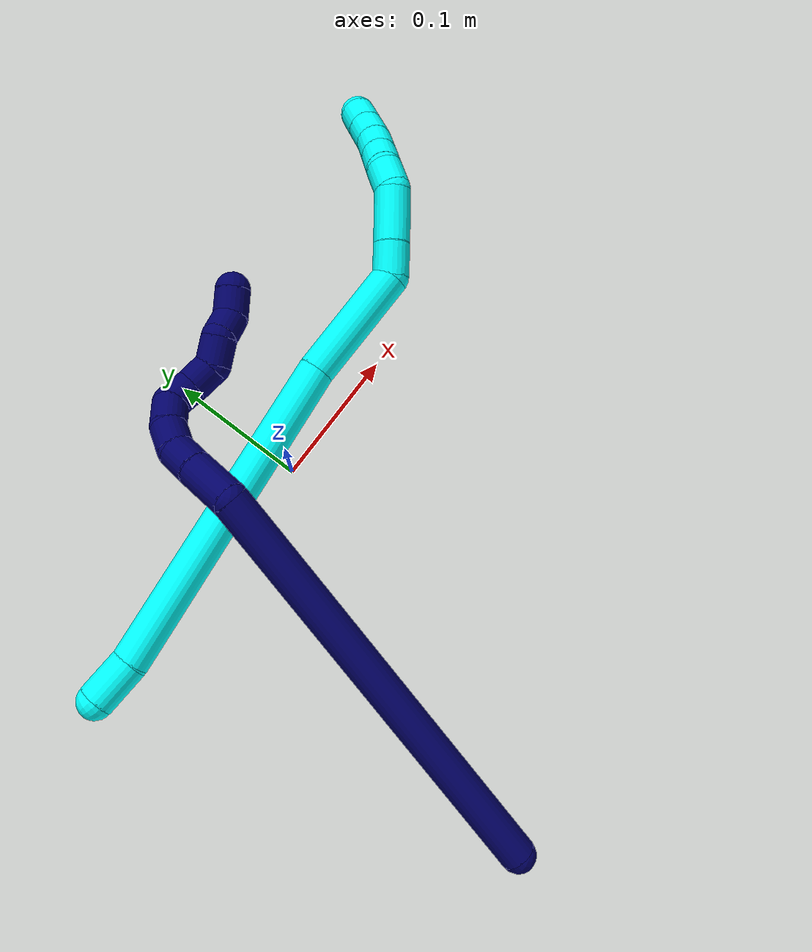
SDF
<sdf version="1.7">
 <world name="default">
  <model name="3">
   <static>0</static>
   <link name="3">
    <collision name="collision-cylinder-e_1_1_4">
     <pose>0.003811 -0.001877 0.015196 0.122875 0.243915 0.015079</pose>
     <geometry><cylinder><radius>0.0125</radius><length>0.031558</length></cylinder></geometry>
     <surface>
      <friction><ode><mu>1.16</mu><mu2>1.16</mu2><slip1>0</slip1><slip2>0</slip2></ode></friction>
      <contact><ode><kp>1e+06</kp><kd>1</kd><max_vel>0</max_vel><min_depth>0.001</min_depth></ode></contact>
     </surface>
    </collision>
    <visual name="visual-cylinder-e_1_1_4">
     <pose>0.003811 -0.001877 0.015196 0.122875 0.243915 0.015079</pose>
     <geometry><cylinder><radius>0.0125</radius><length>0.031558</length></cylinder></geometry>
     <material><ambient>0.003922 1 0.996078 1</ambient></material>
    </visual>
    <collision name="collision-cylinder-e_2_4_5">
     <pose>0.051763 -0.010143 0.134439 0.061339 0.400562 0.012456</pose>
     <geometry><cylinder><radius>0.0125</radius><length>0.226406</length></cylinder></geometry>
     <surface>
      <friction><ode><mu>1.16</mu><mu2>1.16</mu2><slip1>0</slip1><slip2>0</slip2></ode></friction>
      <contact><ode><kp>1e+06</kp><kd>1</kd><max_vel>0</max_vel><min_depth>0.001</min_depth></ode></contact>
     </surface>
    </collision>
    <visual name="visual-cylinder-e_2_4_5">
     <pose>0.051763 -0.010143 0.134439 0.061339 0.400562 0.012456</pose>
     <geometry><cylinder><radius>0.0125</radius><length>0.226406</length></cylinder></geometry>
     <material><ambient>0.003922 1 0.996078 1</ambient></material>
    </visual>
    <collision name="collision-cylinder-e_3_5_6">
     <pose>0.105539 -0.016355 0.277706 -0.004558 0.240845 -0.000552</pose>
     <geometry><cylinder><radius>0.0125</radius><length>0.080776</length></cylinder></geometry>
     <surface>
      <friction><ode><mu>1.16</mu><mu2>1.16</mu2><slip1>0</slip1><slip2>0</slip2></ode></friction>
      <contact><ode><kp>1e+06</kp><kd>1</kd><max_vel>0</max_vel><min_depth>0.001</min_depth></ode></contact>
     </surface>
    </collision>
    <visual name="visual-cylinder-e_3_5_6">
     <pose>0.105539 -0.016355 0.277706 -0.004558 0.240845 -0.000552</pose>
     <geometry><cylinder><radius>0.0125</radius><length>0.080776</length></cylinder></geometry>
     <material><ambient>0.003922 1 0.996078 1</ambient></material>
    </visual>
    <collision name="collision-cylinder-e_4_6_7">
     <pose>0.123274 -0.012983 0.324436 -0.402129 0.78196 -0.167634</pose>
     <geometry><cylinder><radius>0.0125</radius><length>0.022996</length></cylinder></geometry>
     <surface>
      <friction><ode><mu>1.16</mu><mu2>1.16</mu2><slip1>0</slip1><slip2>0</slip2></ode></friction>
      <contact><ode><kp>1e+06</kp><kd>1</kd><max_vel>0</max_vel><min_depth>0.001</min_depth></ode></contact>
     </surface>
    </collision>
    <visual name="visual-cylinder-e_4_6_7">
     <pose>0.123274 -0.012983 0.324436 -0.402129 0.78196 -0.167634</pose>
     <geometry><cylinder><radius>0.0125</radius><length>0.022996</length></cylinder></geometry>
     <material><ambient>0.003922 1 0.996078 1</ambient></material>
    </visual>
    <collision name="collision-cylinder-e_5_7_8">
     <pose>0.145055 -0.005389 0.343819 -0.354893 0.823859 -0.156391</pose>
     <geometry><cylinder><radius>0.0125</radius><length>0.037283</length></cylinder></geometry>
     <surface>
      <friction><ode><mu>1.16</mu><mu2>1.16</mu2><slip1>0</slip1><slip2>0</slip2></ode></friction>
      <contact><ode><kp>1e+06</kp><kd>1</kd><max_vel>0</max_vel><min_depth>0.001</min_depth></ode></contact>
     </surface>
    </collision>
    <visual name="visual-cylinder-e_5_7_8">
     <pose>0.145055 -0.005389 0.343819 -0.354893 0.823859 -0.156391</pose>
     <geometry><cylinder><radius>0.0125</radius><length>0.037283</length></cylinder></geometry>
     <material><ambient>0.003922 1 0.996078 1</ambient></material>
    </visual>
    <collision name="collision-cylinder-e_6_8_9">
     <pose>0.168475 -0.001189 0.358829 0.063952 1.25887 0.046581</pose>
     <geometry><cylinder><radius>0.0125</radius><length>0.020469</length></cylinder></geometry>
     <surface>
      <friction><ode><mu>1.16</mu><mu2>1.16</mu2><slip1>0</slip1><slip2>0</slip2></ode></friction>
      <contact><ode><kp>1e+06</kp><kd>1</kd><max_vel>0</max_vel><min_depth>0.001</min_depth></ode></contact>
     </surface>
    </collision>
    <visual name="visual-cylinder-e_6_8_9">
     <pose>0.168475 -0.001189 0.358829 0.063952 1.25887 0.046581</pose>
     <geometry><cylinder><radius>0.0125</radius><length>0.020469</length></cylinder></geometry>
     <material><ambient>0.003922 1 0.996078 1</ambient></material>
    </visual>
    <collision name="collision-cylinder-e_7_9_10">
     <pose>0.187173 -0.005111 0.364743 0.929272 1.09238 0.591508</pose>
     <geometry><cylinder><radius>0.0125</radius><length>0.02018</length></cylinder></geometry>
     <surface>
      <friction><ode><mu>1.16</mu><mu2>1.16</mu2><slip1>0</slip1><slip2>0</slip2></ode></friction>
      <contact><ode><kp>1e+06</kp><kd>1</kd><max_vel>0</max_vel><min_depth>0.001</min_depth></ode></contact>
     </surface>
    </collision>
    <visual name="visual-cylinder-e_7_9_10">
     <pose>0.187173 -0.005111 0.364743 0.929272 1.09238 0.591508</pose>
     <geometry><cylinder><radius>0.0125</radius><length>0.02018</length></cylinder></geometry>
     <material><ambient>0.003922 1 0.996078 1</ambient></material>
    </visual>
    <collision name="collision-cylinder-e_8_10_11">
     <pose>0.205139 -0.012241 0.370285 0.889867 1.11765 0.579541</pose>
     <geometry><cylinder><radius>0.0125</radius><length>0.020041</length></cylinder></geometry>
     <surface>
      <friction><ode><mu>1.16</mu><mu2>1.16</mu2><slip1>0</slip1><slip2>0</slip2></ode></friction>
      <contact><ode><kp>1e+06</kp><kd>1</kd><max_vel>0</max_vel><min_depth>0.001</min_depth></ode></contact>
     </surface>
    </collision>
    <visual name="visual-cylinder-e_8_10_11">
     <pose>0.205139 -0.012241 0.370285 0.889867 1.11765 0.579541</pose>
     <geometry><cylinder><radius>0.0125</radius><length>0.020041</length></cylinder></geometry>
     <material><ambient>0.003922 1 0.996078 1</ambient></material>
    </visual>
    <collision name="collision-cylinder-e_9_11_12">
     <pose>0.223673 -0.0181 0.374958 0.908211 1.25546 0.68084</pose>
     <geometry><cylinder><radius>0.0125</radius><length>0.020039</length></cylinder></geometry>
     <surface>
      <friction><ode><mu>1.16</mu><mu2>1.16</mu2><slip1>0</slip1><slip2>0</slip2></ode></friction>
      <contact><ode><kp>1e+06</kp><kd>1</kd><max_vel>0</max_vel><min_depth>0.001</min_depth></ode></contact>
     </surface>
    </collision>
    <visual name="visual-cylinder-e_9_11_12">
     <pose>0.223673 -0.0181 0.374958 0.908211 1.25546 0.68084</pose>
     <geometry><cylinder><radius>0.0125</radius><length>0.020039</length></cylinder></geometry>
     <material><ambient>0.003922 1 0.996078 1</ambient></material>
    </visual>
    <collision name="collision-cylinder-e_10_12_2">
     <pose>0.242826 -0.023056 0.378763 0.923787 1.25539 0.693242</pose>
     <geometry><cylinder><radius>0.0125</radius><length>0.020253</length></cylinder></geometry>
     <surface>
      <friction><ode><mu>1.16</mu><mu2>1.16</mu2><slip1>0</slip1><slip2>0</slip2></ode></friction>
      <contact><ode><kp>1e+06</kp><kd>1</kd><max_vel>0</max_vel><min_depth>0.001</min_depth></ode></contact>
     </surface>
    </collision>
    <visual name="visual-cylinder-e_10_12_2">
     <pose>0.242826 -0.023056 0.378763 0.923787 1.25539 0.693242</pose>
     <geometry><cylinder><radius>0.0125</radius><length>0.020253</length></cylinder></geometry>
     <material><ambient>0.003922 1 0.996078 1</ambient></material>
    </visual>
    <collision name="collision-sphere-2">
     <pose>0.252452 -0.025562 0.380656 0 -0 0</pose>
     <geometry><sphere><radius>0.0125</radius></sphere></geometry>
     <surface>
      <friction><ode><mu>1.16</mu><mu2>1.16</mu2><slip1>0</slip1><slip2>0</slip2></ode></friction>
      <contact><ode><kp>1e+06</kp><kd>1</kd><max_vel>0</max_vel><min_depth>0.001</min_depth></ode></contact>
     </surface>
    </collision>
    <visual name="visual-sphere-2">
     <pose>0.252452 -0.025562 0.380656 0 -0 0</pose>
     <geometry><sphere><radius>0.0125</radius></sphere></geometry>
     <material><ambient>0.003922 1 0.996078 1</ambient></material>
    </visual>
    <collision name="collision-sphere-12">
     <pose>0.233199 -0.02055 0.376869 0 -0 0</pose>
     <geometry><sphere><radius>0.0125</radius></sphere></geometry>
     <surface>
      <friction><ode><mu>1.16</mu><mu2>1.16</mu2><slip1>0</slip1><slip2>0</slip2></ode></friction>
      <contact><ode><kp>1e+06</kp><kd>1</kd><max_vel>0</max_vel><min_depth>0.001</min_depth></ode></contact>
     </surface>
    </collision>
    <visual name="visual-sphere-12">
     <pose>0.233199 -0.02055 0.376869 0 -0 0</pose>
     <geometry><sphere><radius>0.0125</radius></sphere></geometry>
     <material><ambient>0.003922 1 0.996078 1</ambient></material>
    </visual>
    <collision name="collision-sphere-11">
     <pose>0.214148 -0.01565 0.373046 0 -0 0</pose>
     <geometry><sphere><radius>0.0125</radius></sphere></geometry>
     <surface>
      <friction><ode><mu>1.16</mu><mu2>1.16</mu2><slip1>0</slip1><slip2>0</slip2></ode></friction>
      <contact><ode><kp>1e+06</kp><kd>1</kd><max_vel>0</max_vel><min_depth>0.001</min_depth></ode></contact>
     </surface>
    </collision>
    <visual name="visual-sphere-11">
     <pose>0.214148 -0.01565 0.373046 0 -0 0</pose>
     <geometry><sphere><radius>0.0125</radius></sphere></geometry>
     <material><ambient>0.003922 1 0.996078 1</ambient></material>
    </visual>
    <collision name="collision-sphere-10">
     <pose>0.19613 -0.008833 0.367523 0 -0 0</pose>
     <geometry><sphere><radius>0.0125</radius></sphere></geometry>
     <surface>
      <friction><ode><mu>1.16</mu><mu2>1.16</mu2><slip1>0</slip1><slip2>0</slip2></ode></friction>
      <contact><ode><kp>1e+06</kp><kd>1</kd><max_vel>0</max_vel><min_depth>0.001</min_depth></ode></contact>
     </surface>
    </collision>
    <visual name="visual-sphere-10">
     <pose>0.19613 -0.008833 0.367523 0 -0 0</pose>
     <geometry><sphere><radius>0.0125</radius></sphere></geometry>
     <material><ambient>0.003922 1 0.996078 1</ambient></material>
    </visual>
    <collision name="collision-sphere-9">
     <pose>0.178216 -0.00139 0.361964 0 -0 0</pose>
     <geometry><sphere><radius>0.0125</radius></sphere></geometry>
     <surface>
      <friction><ode><mu>1.16</mu><mu2>1.16</mu2><slip1>0</slip1><slip2>0</slip2></ode></friction>
      <contact><ode><kp>1e+06</kp><kd>1</kd><max_vel>0</max_vel><min_depth>0.001</min_depth></ode></contact>
     </surface>
    </collision>
    <visual name="visual-sphere-9">
     <pose>0.178216 -0.00139 0.361964 0 -0 0</pose>
     <geometry><sphere><radius>0.0125</radius></sphere></geometry>
     <material><ambient>0.003922 1 0.996078 1</ambient></material>
    </visual>
    <collision name="collision-sphere-4">
     <pose>0.007621 -0.003753 0.030393 0 -0 0</pose>
     <geometry><sphere><radius>0.0125</radius></sphere></geometry>
     <surface>
      <friction><ode><mu>1.16</mu><mu2>1.16</mu2><slip1>0</slip1><slip2>0</slip2></ode></friction>
      <contact><ode><kp>1e+06</kp><kd>1</kd><max_vel>0</max_vel><min_depth>0.001</min_depth></ode></contact>
     </surface>
    </collision>
    <visual name="visual-sphere-4">
     <pose>0.007621 -0.003753 0.030393 0 -0 0</pose>
     <geometry><sphere><radius>0.0125</radius></sphere></geometry>
     <material><ambient>0.003922 1 0.996078 1</ambient></material>
    </visual>
    <collision name="collision-sphere-1">
     <geometry><sphere><radius>0.0125</radius></sphere></geometry>
     <surface>
      <friction><ode><mu>1.16</mu><mu2>1.16</mu2><slip1>0</slip1><slip2>0</slip2></ode></friction>
      <contact><ode><kp>1e+06</kp><kd>1</kd><max_vel>0</max_vel><min_depth>0.001</min_depth></ode></contact>
     </surface>
    </collision>
    <visual name="visual-sphere-1">
     <geometry><sphere><radius>0.0125</radius></sphere></geometry>
     <material><ambient>0.003922 1 0.996078 1</ambient></material>
    </visual>
    <collision name="collision-sphere-8">
     <pose>0.158734 -0.000988 0.355695 0 -0 0</pose>
     <geometry><sphere><radius>0.0125</radius></sphere></geometry>
     <surface>
      <friction><ode><mu>1.16</mu><mu2>1.16</mu2><slip1>0</slip1><slip2>0</slip2></ode></friction>
      <contact><ode><kp>1e+06</kp><kd>1</kd><max_vel>0</max_vel><min_depth>0.001</min_depth></ode></contact>
     </surface>
    </collision>
    <visual name="visual-sphere-8">
     <pose>0.158734 -0.000988 0.355695 0 -0 0</pose>
     <geometry><sphere><radius>0.0125</radius></sphere></geometry>
     <material><ambient>0.003922 1 0.996078 1</ambient></material>
    </visual>
    <collision name="collision-sphere-5">
     <pose>0.095905 -0.016534 0.238485 0 -0 0</pose>
     <geometry><sphere><radius>0.0125</radius></sphere></geometry>
     <surface>
      <friction><ode><mu>1.16</mu><mu2>1.16</mu2><slip1>0</slip1><slip2>0</slip2></ode></friction>
      <contact><ode><kp>1e+06</kp><kd>1</kd><max_vel>0</max_vel><min_depth>0.001</min_depth></ode></contact>
     </surface>
    </collision>
    <visual name="visual-sphere-5">
     <pose>0.095905 -0.016534 0.238485 0 -0 0</pose>
     <geometry><sphere><radius>0.0125</radius></sphere></geometry>
     <material><ambient>0.003922 1 0.996078 1</ambient></material>
    </visual>
    <collision name="collision-sphere-6">
     <pose>0.115172 -0.016176 0.316928 0 -0 0</pose>
     <geometry><sphere><radius>0.0125</radius></sphere></geometry>
     <surface>
      <friction><ode><mu>1.16</mu><mu2>1.16</mu2><slip1>0</slip1><slip2>0</slip2></ode></friction>
      <contact><ode><kp>1e+06</kp><kd>1</kd><max_vel>0</max_vel><min_depth>0.001</min_depth></ode></contact>
     </surface>
    </collision>
    <visual name="visual-sphere-6">
     <pose>0.115172 -0.016176 0.316928 0 -0 0</pose>
     <geometry><sphere><radius>0.0125</radius></sphere></geometry>
     <material><ambient>0.003922 1 0.996078 1</ambient></material>
    </visual>
    <collision name="collision-sphere-7">
     <pose>0.131377 -0.00979 0.331943 0 -0 0</pose>
     <geometry><sphere><radius>0.0125</radius></sphere></geometry>
     <surface>
      <friction><ode><mu>1.16</mu><mu2>1.16</mu2><slip1>0</slip1><slip2>0</slip2></ode></friction>
      <contact><ode><kp>1e+06</kp><kd>1</kd><max_vel>0</max_vel><min_depth>0.001</min_depth></ode></contact>
     </surface>
    </collision>
    <visual name="visual-sphere-7">
     <pose>0.131377 -0.00979 0.331943 0 -0 0</pose>
     <geometry><sphere><radius>0.0125</radius></sphere></geometry>
     <material><ambient>0.003922 1 0.996078 1</ambient></material>
    </visual>
    <inertial>
     <pose>0.098689 -0.010758 0.221879 0 -0 0</pose>
     <mass>0.5</mass>
     <inertia>
      <ixx>0.000987</ixx>
      <ixy>0</ixy>
      <ixz>0</ixz>
      <iyy>0.001049</iyy>
      <iyz>0</iyz>
      <izz>-0.00032</izz>
     </inertia>
    </inertial>
   </link>
   <pose>-0.196171 0.002028 0.055735 1.38487 0.346723 1.25707</pose>
  </model>
  <model name="7">
   <static>0</static>
   <link name="7">
    <collision name="collision-cylinder-e_1_1_4">
     <pose>0.031514 0.091916 -0.116899 -2.47527 0.20883 -0.588092</pose>
     <geometry><cylinder><radius>0.0125</radius><length>0.304021</length></cylinder></geometry>
     <surface>
      <friction><ode><mu>1.16</mu><mu2>1.16</mu2><slip1>0</slip1><slip2>0</slip2></ode></friction>
      <contact><ode><kp>1e+06</kp><kd>1</kd><max_vel>0</max_vel><min_depth>0.001</min_depth></ode></contact>
     </surface>
    </collision>
    <visual name="visual-cylinder-e_1_1_4">
     <pose>0.031514 0.091916 -0.116899 -2.47527 0.20883 -0.588092</pose>
     <geometry><cylinder><radius>0.0125</radius><length>0.304021</length></cylinder></geometry>
     <material><ambient>0.003922 0 0.403922 1</ambient></material>
    </visual>
    <collision name="collision-cylinder-e_2_4_5">
     <pose>0.074901 0.194168 -0.240344 -2.13538 0.770425 -1.26994</pose>
     <geometry><cylinder><radius>0.0125</radius><length>0.034097</length></cylinder></geometry>
     <surface>
      <friction><ode><mu>1.16</mu><mu2>1.16</mu2><slip1>0</slip1><slip2>0</slip2></ode></friction>
      <contact><ode><kp>1e+06</kp><kd>1</kd><max_vel>0</max_vel><min_depth>0.001</min_depth></ode></contact>
     </surface>
    </collision>
    <visual name="visual-cylinder-e_2_4_5">
     <pose>0.074901 0.194168 -0.240344 -2.13538 0.770425 -1.26994</pose>
     <geometry><cylinder><radius>0.0125</radius><length>0.034097</length></cylinder></geometry>
     <material><ambient>0.003922 0 0.403922 1</ambient></material>
    </visual>
    <collision name="collision-cylinder-e_3_5_6">
     <pose>0.094056 0.21087 -0.250179 -2.04758 0.793458 -1.20515</pose>
     <geometry><cylinder><radius>0.0125</radius><length>0.020431</length></cylinder></geometry>
     <surface>
      <friction><ode><mu>1.16</mu><mu2>1.16</mu2><slip1>0</slip1><slip2>0</slip2></ode></friction>
      <contact><ode><kp>1e+06</kp><kd>1</kd><max_vel>0</max_vel><min_depth>0.001</min_depth></ode></contact>
     </surface>
    </collision>
    <visual name="visual-cylinder-e_3_5_6">
     <pose>0.094056 0.21087 -0.250179 -2.04758 0.793458 -1.20515</pose>
     <geometry><cylinder><radius>0.0125</radius><length>0.020431</length></cylinder></geometry>
     <material><ambient>0.003922 0 0.403922 1</ambient></material>
    </visual>
    <collision name="collision-cylinder-e_4_6_7">
     <pose>0.10637 0.226067 -0.25485 -1.72613 0.512696 -0.594552</pose>
     <geometry><cylinder><radius>0.0125</radius><length>0.020515</length></cylinder></geometry>
     <surface>
      <friction><ode><mu>1.16</mu><mu2>1.16</mu2><slip1>0</slip1><slip2>0</slip2></ode></friction>
      <contact><ode><kp>1e+06</kp><kd>1</kd><max_vel>0</max_vel><min_depth>0.001</min_depth></ode></contact>
     </surface>
    </collision>
    <visual name="visual-cylinder-e_4_6_7">
     <pose>0.10637 0.226067 -0.25485 -1.72613 0.512696 -0.594552</pose>
     <geometry><cylinder><radius>0.0125</radius><length>0.020515</length></cylinder></geometry>
     <material><ambient>0.003922 0 0.403922 1</ambient></material>
    </visual>
    <collision name="collision-cylinder-e_5_7_8">
     <pose>0.114538 0.24469 -0.255084 -1.45397 0.308063 -0.274475</pose>
     <geometry><cylinder><radius>0.0125</radius><length>0.020692</length></cylinder></geometry>
     <surface>
      <friction><ode><mu>1.16</mu><mu2>1.16</mu2><slip1>0</slip1><slip2>0</slip2></ode></friction>
      <contact><ode><kp>1e+06</kp><kd>1</kd><max_vel>0</max_vel><min_depth>0.001</min_depth></ode></contact>
     </surface>
    </collision>
    <visual name="visual-cylinder-e_5_7_8">
     <pose>0.114538 0.24469 -0.255084 -1.45397 0.308063 -0.274475</pose>
     <geometry><cylinder><radius>0.0125</radius><length>0.020692</length></cylinder></geometry>
     <material><ambient>0.003922 0 0.403922 1</ambient></material>
    </visual>
    <collision name="collision-cylinder-e_6_8_9">
     <pose>0.115517 0.262657 -0.248389 -0.974747 -0.21513 0.11434</pose>
     <geometry><cylinder><radius>0.0125</radius><length>0.020223</length></cylinder></geometry>
     <surface>
      <friction><ode><mu>1.16</mu><mu2>1.16</mu2><slip1>0</slip1><slip2>0</slip2></ode></friction>
      <contact><ode><kp>1e+06</kp><kd>1</kd><max_vel>0</max_vel><min_depth>0.001</min_depth></ode></contact>
     </surface>
    </collision>
    <visual name="visual-cylinder-e_6_8_9">
     <pose>0.115517 0.262657 -0.248389 -0.974747 -0.21513 0.11434</pose>
     <geometry><cylinder><radius>0.0125</radius><length>0.020223</length></cylinder></geometry>
     <material><ambient>0.003922 0 0.403922 1</ambient></material>
    </visual>
    <collision name="collision-cylinder-e_7_9_10">
     <pose>0.106509 0.277709 -0.240434 -1.23388 -0.754476 0.547933</pose>
     <geometry><cylinder><radius>0.0125</radius><length>0.020001</length></cylinder></geometry>
     <surface>
      <friction><ode><mu>1.16</mu><mu2>1.16</mu2><slip1>0</slip1><slip2>0</slip2></ode></friction>
      <contact><ode><kp>1e+06</kp><kd>1</kd><max_vel>0</max_vel><min_depth>0.001</min_depth></ode></contact>
     </surface>
    </collision>
    <visual name="visual-cylinder-e_7_9_10">
     <pose>0.106509 0.277709 -0.240434 -1.23388 -0.754476 0.547933</pose>
     <geometry><cylinder><radius>0.0125</radius><length>0.020001</length></cylinder></geometry>
     <material><ambient>0.003922 0 0.403922 1</ambient></material>
    </visual>
    <collision name="collision-cylinder-e_8_10_11">
     <pose>0.096482 0.293918 -0.239713 -1.74973 -0.323301 0.385578</pose>
     <geometry><cylinder><radius>0.0125</radius><length>0.020003</length></cylinder></geometry>
     <surface>
      <friction><ode><mu>1.16</mu><mu2>1.16</mu2><slip1>0</slip1><slip2>0</slip2></ode></friction>
      <contact><ode><kp>1e+06</kp><kd>1</kd><max_vel>0</max_vel><min_depth>0.001</min_depth></ode></contact>
     </surface>
    </collision>
    <visual name="visual-cylinder-e_8_10_11">
     <pose>0.096482 0.293918 -0.239713 -1.74973 -0.323301 0.385578</pose>
     <geometry><cylinder><radius>0.0125</radius><length>0.020003</length></cylinder></geometry>
     <material><ambient>0.003922 0 0.403922 1</ambient></material>
    </visual>
    <collision name="collision-cylinder-e_9_11_12">
     <pose>0.093786 0.312622 -0.237924 -1.21548 0.04815 -0.033495</pose>
     <geometry><cylinder><radius>0.0125</radius><length>0.020015</length></cylinder></geometry>
     <surface>
      <friction><ode><mu>1.16</mu><mu2>1.16</mu2><slip1>0</slip1><slip2>0</slip2></ode></friction>
      <contact><ode><kp>1e+06</kp><kd>1</kd><max_vel>0</max_vel><min_depth>0.001</min_depth></ode></contact>
     </surface>
    </collision>
    <visual name="visual-cylinder-e_9_11_12">
     <pose>0.093786 0.312622 -0.237924 -1.21548 0.04815 -0.033495</pose>
     <geometry><cylinder><radius>0.0125</radius><length>0.020015</length></cylinder></geometry>
     <material><ambient>0.003922 0 0.403922 1</ambient></material>
    </visual>
    <collision name="collision-cylinder-e_10_12_2">
     <pose>0.092622 0.331619 -0.236601 -1.79098 -0.16532 0.206148</pose>
     <geometry><cylinder><radius>0.0125</radius><length>0.020001</length></cylinder></geometry>
     <surface>
      <friction><ode><mu>1.16</mu><mu2>1.16</mu2><slip1>0</slip1><slip2>0</slip2></ode></friction>
      <contact><ode><kp>1e+06</kp><kd>1</kd><max_vel>0</max_vel><min_depth>0.001</min_depth></ode></contact>
     </surface>
    </collision>
    <visual name="visual-cylinder-e_10_12_2">
     <pose>0.092622 0.331619 -0.236601 -1.79098 -0.16532 0.206148</pose>
     <geometry><cylinder><radius>0.0125</radius><length>0.020001</length></cylinder></geometry>
     <material><ambient>0.003922 0 0.403922 1</ambient></material>
    </visual>
    <collision name="collision-sphere-2">
     <pose>0.090976 0.341245 -0.238755 0 -0 0</pose>
     <geometry><sphere><radius>0.0125</radius></sphere></geometry>
     <surface>
      <friction><ode><mu>1.16</mu><mu2>1.16</mu2><slip1>0</slip1><slip2>0</slip2></ode></friction>
      <contact><ode><kp>1e+06</kp><kd>1</kd><max_vel>0</max_vel><min_depth>0.001</min_depth></ode></contact>
     </surface>
    </collision>
    <visual name="visual-sphere-2">
     <pose>0.090976 0.341245 -0.238755 0 -0 0</pose>
     <geometry><sphere><radius>0.0125</radius></sphere></geometry>
     <material><ambient>0.003922 0 0.403922 1</ambient></material>
    </visual>
    <collision name="collision-sphere-12">
     <pose>0.094267 0.321993 -0.234446 0 -0 0</pose>
     <geometry><sphere><radius>0.0125</radius></sphere></geometry>
     <surface>
      <friction><ode><mu>1.16</mu><mu2>1.16</mu2><slip1>0</slip1><slip2>0</slip2></ode></friction>
      <contact><ode><kp>1e+06</kp><kd>1</kd><max_vel>0</max_vel><min_depth>0.001</min_depth></ode></contact>
     </surface>
    </collision>
    <visual name="visual-sphere-12">
     <pose>0.094267 0.321993 -0.234446 0 -0 0</pose>
     <geometry><sphere><radius>0.0125</radius></sphere></geometry>
     <material><ambient>0.003922 0 0.403922 1</ambient></material>
    </visual>
    <collision name="collision-sphere-11">
     <pose>0.093304 0.30325 -0.241401 0 -0 0</pose>
     <geometry><sphere><radius>0.0125</radius></sphere></geometry>
     <surface>
      <friction><ode><mu>1.16</mu><mu2>1.16</mu2><slip1>0</slip1><slip2>0</slip2></ode></friction>
      <contact><ode><kp>1e+06</kp><kd>1</kd><max_vel>0</max_vel><min_depth>0.001</min_depth></ode></contact>
     </surface>
    </collision>
    <visual name="visual-sphere-11">
     <pose>0.093304 0.30325 -0.241401 0 -0 0</pose>
     <geometry><sphere><radius>0.0125</radius></sphere></geometry>
     <material><ambient>0.003922 0 0.403922 1</ambient></material>
    </visual>
    <collision name="collision-sphere-10">
     <pose>0.099659 0.284586 -0.238025 0 -0 0</pose>
     <geometry><sphere><radius>0.0125</radius></sphere></geometry>
     <surface>
      <friction><ode><mu>1.16</mu><mu2>1.16</mu2><slip1>0</slip1><slip2>0</slip2></ode></friction>
      <contact><ode><kp>1e+06</kp><kd>1</kd><max_vel>0</max_vel><min_depth>0.001</min_depth></ode></contact>
     </surface>
    </collision>
    <visual name="visual-sphere-10">
     <pose>0.099659 0.284586 -0.238025 0 -0 0</pose>
     <geometry><sphere><radius>0.0125</radius></sphere></geometry>
     <material><ambient>0.003922 0 0.403922 1</ambient></material>
    </visual>
    <collision name="collision-sphere-9">
     <pose>0.113358 0.270832 -0.242843 0 -0 0</pose>
     <geometry><sphere><radius>0.0125</radius></sphere></geometry>
     <surface>
      <friction><ode><mu>1.16</mu><mu2>1.16</mu2><slip1>0</slip1><slip2>0</slip2></ode></friction>
      <contact><ode><kp>1e+06</kp><kd>1</kd><max_vel>0</max_vel><min_depth>0.001</min_depth></ode></contact>
     </surface>
    </collision>
    <visual name="visual-sphere-9">
     <pose>0.113358 0.270832 -0.242843 0 -0 0</pose>
     <geometry><sphere><radius>0.0125</radius></sphere></geometry>
     <material><ambient>0.003922 0 0.403922 1</ambient></material>
    </visual>
    <collision name="collision-sphere-4">
     <pose>0.063028 0.183833 -0.233798 0 -0 0</pose>
     <geometry><sphere><radius>0.0125</radius></sphere></geometry>
     <surface>
      <friction><ode><mu>1.16</mu><mu2>1.16</mu2><slip1>0</slip1><slip2>0</slip2></ode></friction>
      <contact><ode><kp>1e+06</kp><kd>1</kd><max_vel>0</max_vel><min_depth>0.001</min_depth></ode></contact>
     </surface>
    </collision>
    <visual name="visual-sphere-4">
     <pose>0.063028 0.183833 -0.233798 0 -0 0</pose>
     <geometry><sphere><radius>0.0125</radius></sphere></geometry>
     <material><ambient>0.003922 0 0.403922 1</ambient></material>
    </visual>
    <collision name="collision-sphere-1">
     <geometry><sphere><radius>0.0125</radius></sphere></geometry>
     <surface>
      <friction><ode><mu>1.16</mu><mu2>1.16</mu2><slip1>0</slip1><slip2>0</slip2></ode></friction>
      <contact><ode><kp>1e+06</kp><kd>1</kd><max_vel>0</max_vel><min_depth>0.001</min_depth></ode></contact>
     </surface>
    </collision>
    <visual name="visual-sphere-1">
     <geometry><sphere><radius>0.0125</radius></sphere></geometry>
     <material><ambient>0.003922 0 0.403922 1</ambient></material>
    </visual>
    <collision name="collision-sphere-8">
     <pose>0.117675 0.254482 -0.253934 0 -0 0</pose>
     <geometry><sphere><radius>0.0125</radius></sphere></geometry>
     <surface>
      <friction><ode><mu>1.16</mu><mu2>1.16</mu2><slip1>0</slip1><slip2>0</slip2></ode></friction>
      <contact><ode><kp>1e+06</kp><kd>1</kd><max_vel>0</max_vel><min_depth>0.001</min_depth></ode></contact>
     </surface>
    </collision>
    <visual name="visual-sphere-8">
     <pose>0.117675 0.254482 -0.253934 0 -0 0</pose>
     <geometry><sphere><radius>0.0125</radius></sphere></geometry>
     <material><ambient>0.003922 0 0.403922 1</ambient></material>
    </visual>
    <collision name="collision-sphere-5">
     <pose>0.086775 0.204504 -0.24689 0 -0 0</pose>
     <geometry><sphere><radius>0.0125</radius></sphere></geometry>
     <surface>
      <friction><ode><mu>1.16</mu><mu2>1.16</mu2><slip1>0</slip1><slip2>0</slip2></ode></friction>
      <contact><ode><kp>1e+06</kp><kd>1</kd><max_vel>0</max_vel><min_depth>0.001</min_depth></ode></contact>
     </surface>
    </collision>
    <visual name="visual-sphere-5">
     <pose>0.086775 0.204504 -0.24689 0 -0 0</pose>
     <geometry><sphere><radius>0.0125</radius></sphere></geometry>
     <material><ambient>0.003922 0 0.403922 1</ambient></material>
    </visual>
    <collision name="collision-sphere-6">
     <pose>0.101338 0.217236 -0.253467 0 -0 0</pose>
     <geometry><sphere><radius>0.0125</radius></sphere></geometry>
     <surface>
      <friction><ode><mu>1.16</mu><mu2>1.16</mu2><slip1>0</slip1><slip2>0</slip2></ode></friction>
      <contact><ode><kp>1e+06</kp><kd>1</kd><max_vel>0</max_vel><min_depth>0.001</min_depth></ode></contact>
     </surface>
    </collision>
    <visual name="visual-sphere-6">
     <pose>0.101338 0.217236 -0.253467 0 -0 0</pose>
     <geometry><sphere><radius>0.0125</radius></sphere></geometry>
     <material><ambient>0.003922 0 0.403922 1</ambient></material>
    </visual>
    <collision name="collision-sphere-7">
     <pose>0.111401 0.234899 -0.256233 0 -0 0</pose>
     <geometry><sphere><radius>0.0125</radius></sphere></geometry>
     <surface>
      <friction><ode><mu>1.16</mu><mu2>1.16</mu2><slip1>0</slip1><slip2>0</slip2></ode></friction>
      <contact><ode><kp>1e+06</kp><kd>1</kd><max_vel>0</max_vel><min_depth>0.001</min_depth></ode></contact>
     </surface>
    </collision>
    <visual name="visual-sphere-7">
     <pose>0.111401 0.234899 -0.256233 0 -0 0</pose>
     <geometry><sphere><radius>0.0125</radius></sphere></geometry>
     <material><ambient>0.003922 0 0.403922 1</ambient></material>
    </visual>
    <inertial>
     <pose>0.05747 0.15642 -0.166949 0 -0 0</pose>
     <mass>0.5</mass>
     <inertia>
      <ixx>0.000652</ixx>
      <ixy>0</ixy>
      <ixz>0</ixz>
      <iyy>-0.002622</iyy>
      <iyz>0</iyz>
      <izz>-0.001946</izz>
     </inertia>
    </inertial>
   </link>
   <pose>-0.112148 -0.277157 0.012017 -2.84497 0.769426 2.32055</pose>
  </model>
 </world>
</sdf>
